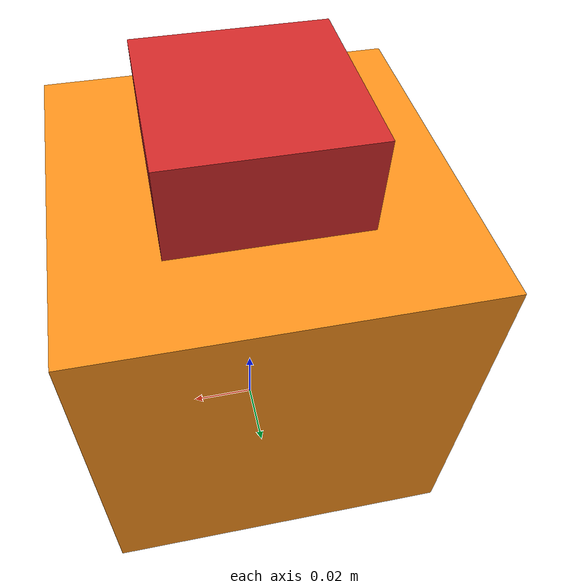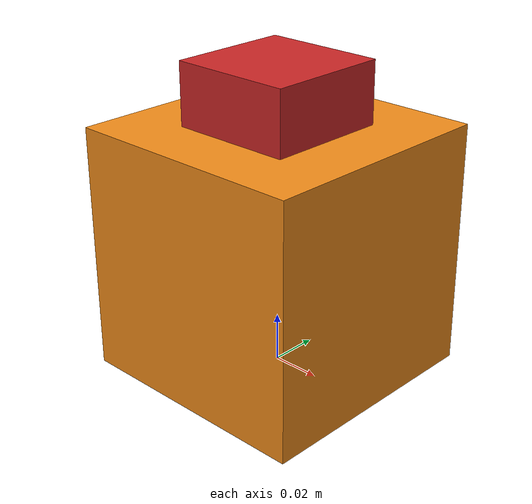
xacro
<?xml version="1.0"?>
<!-- Revolute-Revolute Manipulator -->
<robot name="camera" xmlns:xacro="http://www.ros.org/wiki/xacro">

  <!-- Constants for robot dimensions -->
  <xacro:property name="PI" value="3.1415926535897931"/>
  <xacro:property name="mass" value="1" /> <!-- arbitrary value for mass -->
  <xacro:property name="width" value="0.1" /> <!-- Square dimensions (widthxwidth) of beams -->
  <xacro:property name="height1" value="0.1" /> <!-- Link 1 -->
  <xacro:property name="height2" value="1" /> <!-- Link 2 -->
  <xacro:property name="height3" value="0" /> <!-- Link 3 -->
  <xacro:property name="camera_link" value="0.05" /> <!-- Size of square 'camera' box -->
  <xacro:property name="axel_offset" value="0.05" /> <!-- Space btw top of beam and the each joint -->

  <!-- Import all Gazebo-customization elements, including Gazebo colors -->
  <xacro:include filename="$(find camera_simulation)/urdf/camera.gazebo" />
  <!-- Import Rviz colors -->
  <xacro:include filename="$(find camera_simulation)/urdf/materials.xacro" />

  <!-- Used for fixing robot to Gazebo 'base_link' -->
  <link name="world"/>

  <joint name="fixed" type="fixed">
    <parent link="world"/>
    <child link="link1"/>
  </joint>

  <!-- Base Link -->
  <link name="link1">
    <collision>
      <origin xyz="0 0 ${height1/2}" rpy="0 0 0"/>
      <geometry>
	<box size="${width} ${width} ${height1}"/>
      </geometry>
    </collision>

    <visual>
      <origin xyz="0 0 ${height1/2}" rpy="0 0 0"/>
      <geometry>
	<box size="${width} ${width} ${height1}"/>
      </geometry>
      <material name="orange"/>
    </visual>

    <inertial>
      <origin xyz="0 0 ${height1/2}" rpy="0 0 0"/>
      <mass value="${mass}"/>
      <inertia
	  ixx="${mass / 12.0 * (width*width + height1*height1)}" ixy="0.0" ixz="0.0"
	  iyy="${mass / 12.0 * (height1*height1 + width*width)}" iyz="0.0"
	  izz="${mass / 12.0 * (width*width + width*width)}"/>
    </inertial>
  </link>

  <joint name="camera_joint" type="fixed">
    <axis xyz="0 1 0" />
    <origin xyz="0 0 0.1" rpy="0 ${-pi/2} 0"/>
    <parent link="link1"/>
    <child link="camera_link"/>
  </joint>

  <!-- Camera -->
  <link name="camera_link">
    <collision>
      <origin xyz="0 0 0" rpy="0 0 0"/>
      <geometry>
	<box size="${camera_link} ${camera_link} ${camera_link}"/>
      </geometry>
    </collision>

    <visual>
      <origin xyz="0 0 0" rpy="0 0 0"/>
      <geometry>
	<box size="${camera_link} ${camera_link} ${camera_link}"/>
      </geometry>
      <material name="red"/>
    </visual>

    <inertial>
      <mass value="1e-5" />
      <origin xyz="0 0 0" rpy="0 0 0"/>
      <inertia ixx="1e-6" ixy="0" ixz="0" iyy="1e-6" iyz="0" izz="1e-6" />
    </inertial>
  </link>

  <!-- generate an optical frame http://www.ros.org/reps/rep-0103.html#suffix-frames
      so that ros and opencv can operate on the camera frame correctly -->
  <joint name="camera_optical_joint" type="fixed">
    <!-- these values have to be these values otherwise the gazebo camera image
        won't be aligned properly with the frame it is supposedly originating from -->
    <origin xyz="0 0 0" rpy="${-pi/2} 0 ${-pi/2}"/>
    <parent link="camera_link"/>
    <child link="camera_link_optical"/>
  </joint>

  <link name="camera_link_optical">
  </link>

</robot>
